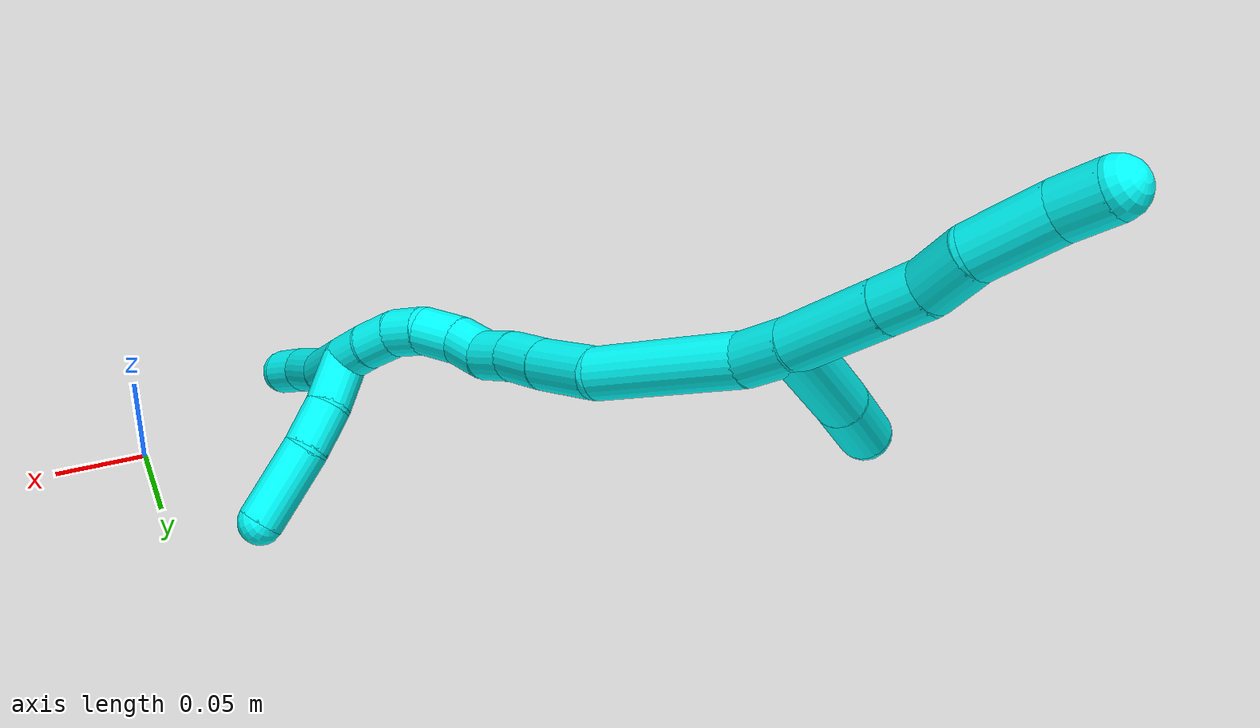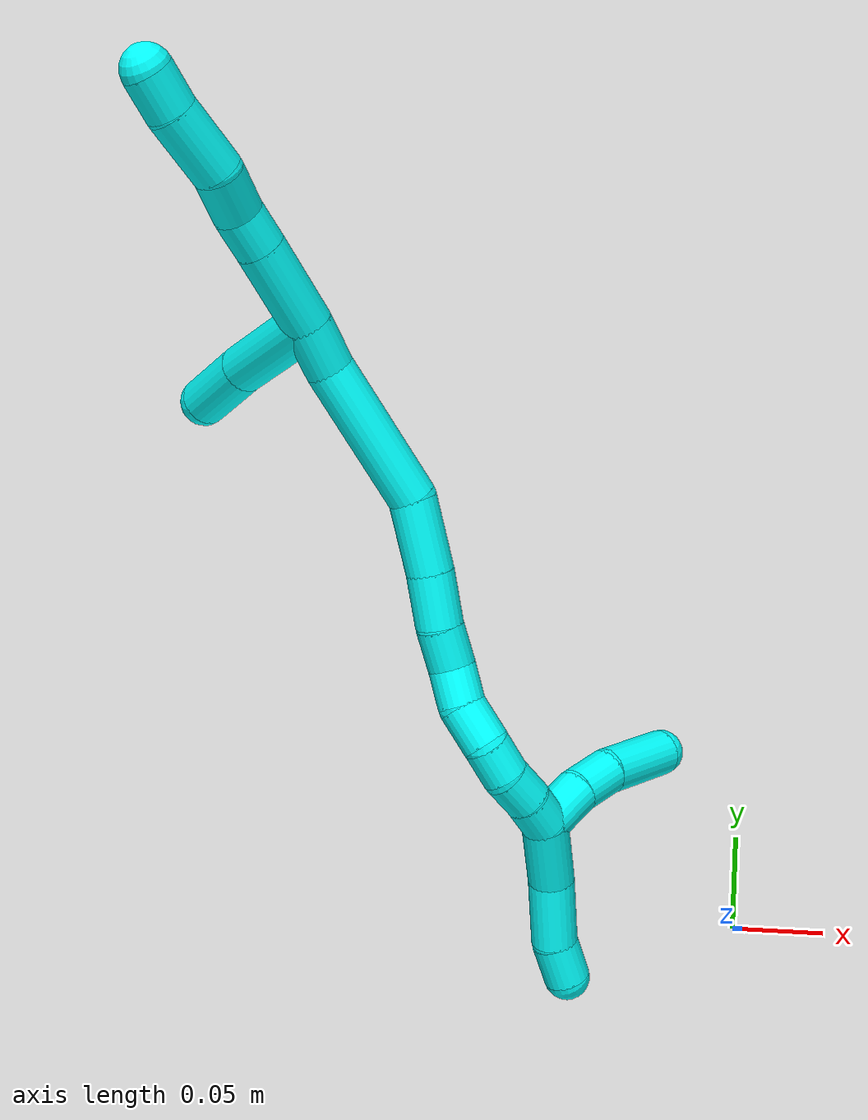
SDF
<sdf version="1.7">
 <world name="default">
  <model name="3">
   <static>0</static>
   <link name="3">
    <collision name="collision-cylinder-e_1_2_8">
     <pose>-0.00252 0.001022 0.023089 -0.044222 -0.108628 0.002405</pose>
     <geometry><cylinder><radius>0.0125</radius><length>0.046496</length></cylinder></geometry>
     <surface>
      <friction><ode><mu>1.16</mu><mu2>1.16</mu2><slip1>0</slip1><slip2>0</slip2></ode></friction>
      <contact><ode><kp>1e+06</kp><kd>1</kd><max_vel>0</max_vel><min_depth>0.001</min_depth></ode></contact>
     </surface>
    </collision>
    <visual name="visual-cylinder-e_1_2_8">
     <pose>-0.00252 0.001022 0.023089 -0.044222 -0.108628 0.002405</pose>
     <geometry><cylinder><radius>0.0125</radius><length>0.046496</length></cylinder></geometry>
     <material><ambient>0.003922 1 0.996078 1</ambient></material>
    </visual>
    <collision name="collision-cylinder-e_2_8_9">
     <pose>-0.006346 0.002439 0.056362 -0.038836 -0.127304 0.002476</pose>
     <geometry><cylinder><radius>0.0125</radius><length>0.020552</length></cylinder></geometry>
     <surface>
      <friction><ode><mu>1.16</mu><mu2>1.16</mu2><slip1>0</slip1><slip2>0</slip2></ode></friction>
      <contact><ode><kp>1e+06</kp><kd>1</kd><max_vel>0</max_vel><min_depth>0.001</min_depth></ode></contact>
     </surface>
    </collision>
    <visual name="visual-cylinder-e_2_8_9">
     <pose>-0.006346 0.002439 0.056362 -0.038836 -0.127304 0.002476</pose>
     <geometry><cylinder><radius>0.0125</radius><length>0.020552</length></cylinder></geometry>
     <material><ambient>0.003922 1 0.996078 1</ambient></material>
    </visual>
    <collision name="collision-cylinder-e_3_9_10">
     <pose>-0.007185 0.00084 0.078933 0.159702 0.03706 0.002966</pose>
     <geometry><cylinder><radius>0.0125</radius><length>0.025108</length></cylinder></geometry>
     <surface>
      <friction><ode><mu>1.16</mu><mu2>1.16</mu2><slip1>0</slip1><slip2>0</slip2></ode></friction>
      <contact><ode><kp>1e+06</kp><kd>1</kd><max_vel>0</max_vel><min_depth>0.001</min_depth></ode></contact>
     </surface>
    </collision>
    <visual name="visual-cylinder-e_3_9_10">
     <pose>-0.007185 0.00084 0.078933 0.159702 0.03706 0.002966</pose>
     <geometry><cylinder><radius>0.0125</radius><length>0.025108</length></cylinder></geometry>
     <material><ambient>0.003922 1 0.996078 1</ambient></material>
    </visual>
    <collision name="collision-cylinder-e_4_10_11">
     <pose>-0.010252 -0.00133 0.109011 0.009894 -0.197065 -0.000978</pose>
     <geometry><cylinder><radius>0.0125</radius><length>0.036085</length></cylinder></geometry>
     <surface>
      <friction><ode><mu>1.16</mu><mu2>1.16</mu2><slip1>0</slip1><slip2>0</slip2></ode></friction>
      <contact><ode><kp>1e+06</kp><kd>1</kd><max_vel>0</max_vel><min_depth>0.001</min_depth></ode></contact>
     </surface>
    </collision>
    <visual name="visual-cylinder-e_4_10_11">
     <pose>-0.010252 -0.00133 0.109011 0.009894 -0.197065 -0.000978</pose>
     <geometry><cylinder><radius>0.0125</radius><length>0.036085</length></cylinder></geometry>
     <material><ambient>0.003922 1 0.996078 1</ambient></material>
    </visual>
    <collision name="collision-cylinder-e_5_11_6">
     <pose>-0.014853 -0.000705 0.137501 -0.074017 -0.098329 0.003644</pose>
     <geometry><cylinder><radius>0.0125</radius><length>0.021759</length></cylinder></geometry>
     <surface>
      <friction><ode><mu>1.16</mu><mu2>1.16</mu2><slip1>0</slip1><slip2>0</slip2></ode></friction>
      <contact><ode><kp>1e+06</kp><kd>1</kd><max_vel>0</max_vel><min_depth>0.001</min_depth></ode></contact>
     </surface>
    </collision>
    <visual name="visual-cylinder-e_5_11_6">
     <pose>-0.014853 -0.000705 0.137501 -0.074017 -0.098329 0.003644</pose>
     <geometry><cylinder><radius>0.0125</radius><length>0.021759</length></cylinder></geometry>
     <material><ambient>0.003922 1 0.996078 1</ambient></material>
    </visual>
    <collision name="collision-cylinder-e_1_2_12">
     <pose>-0.022993 0.013197 -0.013586 -2.37069 -0.881757 1.72117</pose>
     <geometry><cylinder><radius>0.0125</radius><length>0.05958</length></cylinder></geometry>
     <surface>
      <friction><ode><mu>1.16</mu><mu2>1.16</mu2><slip1>0</slip1><slip2>0</slip2></ode></friction>
      <contact><ode><kp>1e+06</kp><kd>1</kd><max_vel>0</max_vel><min_depth>0.001</min_depth></ode></contact>
     </surface>
    </collision>
    <visual name="visual-cylinder-e_1_2_12">
     <pose>-0.022993 0.013197 -0.013586 -2.37069 -0.881757 1.72117</pose>
     <geometry><cylinder><radius>0.0125</radius><length>0.05958</length></cylinder></geometry>
     <material><ambient>0.003922 1 0.996078 1</ambient></material>
    </visual>
    <collision name="collision-cylinder-e_2_12_5">
     <pose>-0.061509 0.034394 -0.037345 -2.47529 -0.875783 1.86863</pose>
     <geometry><cylinder><radius>0.0125</radius><length>0.04042</length></cylinder></geometry>
     <surface>
      <friction><ode><mu>1.16</mu><mu2>1.16</mu2><slip1>0</slip1><slip2>0</slip2></ode></friction>
      <contact><ode><kp>1e+06</kp><kd>1</kd><max_vel>0</max_vel><min_depth>0.001</min_depth></ode></contact>
     </surface>
    </collision>
    <visual name="visual-cylinder-e_2_12_5">
     <pose>-0.061509 0.034394 -0.037345 -2.47529 -0.875783 1.86863</pose>
     <geometry><cylinder><radius>0.0125</radius><length>0.04042</length></cylinder></geometry>
     <material><ambient>0.003922 1 0.996078 1</ambient></material>
    </visual>
    <collision name="collision-cylinder-e_1_2_13">
     <pose>0.00056 -0.001586 -0.012954 3.01973 0.042922 0.676619</pose>
     <geometry><cylinder><radius>0.0125</radius><length>0.026125</length></cylinder></geometry>
     <surface>
      <friction><ode><mu>1.16</mu><mu2>1.16</mu2><slip1>0</slip1><slip2>0</slip2></ode></friction>
      <contact><ode><kp>1e+06</kp><kd>1</kd><max_vel>0</max_vel><min_depth>0.001</min_depth></ode></contact>
     </surface>
    </collision>
    <visual name="visual-cylinder-e_1_2_13">
     <pose>0.00056 -0.001586 -0.012954 3.01973 0.042922 0.676619</pose>
     <geometry><cylinder><radius>0.0125</radius><length>0.026125</length></cylinder></geometry>
     <material><ambient>0.003922 1 0.996078 1</ambient></material>
    </visual>
    <collision name="collision-cylinder-e_2_13_14">
     <pose>0.008565 -0.014782 -0.06243 2.83383 0.191849 1.11048</pose>
     <geometry><cylinder><radius>0.0125</radius><length>0.07808</length></cylinder></geometry>
     <surface>
      <friction><ode><mu>1.16</mu><mu2>1.16</mu2><slip1>0</slip1><slip2>0</slip2></ode></friction>
      <contact><ode><kp>1e+06</kp><kd>1</kd><max_vel>0</max_vel><min_depth>0.001</min_depth></ode></contact>
     </surface>
    </collision>
    <visual name="visual-cylinder-e_2_13_14">
     <pose>0.008565 -0.014782 -0.06243 2.83383 0.191849 1.11048</pose>
     <geometry><cylinder><radius>0.0125</radius><length>0.07808</length></cylinder></geometry>
     <material><ambient>0.003922 1 0.996078 1</ambient></material>
    </visual>
    <collision name="collision-cylinder-e_3_14_15">
     <pose>0.013732 -0.034539 -0.116669 2.71052 -0.116227 -0.519456</pose>
     <geometry><cylinder><radius>0.0125</radius><length>0.039264</length></cylinder></geometry>
     <surface>
      <friction><ode><mu>1.16</mu><mu2>1.16</mu2><slip1>0</slip1><slip2>0</slip2></ode></friction>
      <contact><ode><kp>1e+06</kp><kd>1</kd><max_vel>0</max_vel><min_depth>0.001</min_depth></ode></contact>
     </surface>
    </collision>
    <visual name="visual-cylinder-e_3_14_15">
     <pose>0.013732 -0.034539 -0.116669 2.71052 -0.116227 -0.519456</pose>
     <geometry><cylinder><radius>0.0125</radius><length>0.039264</length></cylinder></geometry>
     <material><ambient>0.003922 1 0.996078 1</ambient></material>
    </visual>
    <collision name="collision-cylinder-e_4_15_16">
     <pose>0.008994 -0.049023 -0.147017 2.67672 -0.172437 -0.700188</pose>
     <geometry><cylinder><radius>0.0125</radius><length>0.028691</length></cylinder></geometry>
     <surface>
      <friction><ode><mu>1.16</mu><mu2>1.16</mu2><slip1>0</slip1><slip2>0</slip2></ode></friction>
      <contact><ode><kp>1e+06</kp><kd>1</kd><max_vel>0</max_vel><min_depth>0.001</min_depth></ode></contact>
     </surface>
    </collision>
    <visual name="visual-cylinder-e_4_15_16">
     <pose>0.008994 -0.049023 -0.147017 2.67672 -0.172437 -0.700188</pose>
     <geometry><cylinder><radius>0.0125</radius><length>0.028691</length></cylinder></geometry>
     <material><ambient>0.003922 1 0.996078 1</ambient></material>
    </visual>
    <collision name="collision-cylinder-e_5_16_17">
     <pose>0.005693 -0.059478 -0.170352 2.77419 -0.073117 -0.388739</pose>
     <geometry><cylinder><radius>0.0125</radius><length>0.022996</length></cylinder></geometry>
     <surface>
      <friction><ode><mu>1.16</mu><mu2>1.16</mu2><slip1>0</slip1><slip2>0</slip2></ode></friction>
      <contact><ode><kp>1e+06</kp><kd>1</kd><max_vel>0</max_vel><min_depth>0.001</min_depth></ode></contact>
     </surface>
    </collision>
    <visual name="visual-cylinder-e_5_16_17">
     <pose>0.005693 -0.059478 -0.170352 2.77419 -0.073117 -0.388739</pose>
     <geometry><cylinder><radius>0.0125</radius><length>0.022996</length></cylinder></geometry>
     <material><ambient>0.003922 1 0.996078 1</ambient></material>
    </visual>
    <collision name="collision-cylinder-e_6_17_18">
     <pose>0.004319 -0.07044 -0.188988 2.42986 -0.050916 -0.1368</pose>
     <geometry><cylinder><radius>0.0125</radius><length>0.020981</length></cylinder></geometry>
     <surface>
      <friction><ode><mu>1.16</mu><mu2>1.16</mu2><slip1>0</slip1><slip2>0</slip2></ode></friction>
      <contact><ode><kp>1e+06</kp><kd>1</kd><max_vel>0</max_vel><min_depth>0.001</min_depth></ode></contact>
     </surface>
    </collision>
    <visual name="visual-cylinder-e_6_17_18">
     <pose>0.004319 -0.07044 -0.188988 2.42986 -0.050916 -0.1368</pose>
     <geometry><cylinder><radius>0.0125</radius><length>0.020981</length></cylinder></geometry>
     <material><ambient>0.003922 1 0.996078 1</ambient></material>
    </visual>
    <collision name="collision-cylinder-e_7_18_19">
     <pose>0.006688 -0.084121 -0.205847 2.4879 0.252717 0.717066</pose>
     <geometry><cylinder><radius>0.0125</radius><length>0.023225</length></cylinder></geometry>
     <surface>
      <friction><ode><mu>1.16</mu><mu2>1.16</mu2><slip1>0</slip1><slip2>0</slip2></ode></friction>
      <contact><ode><kp>1e+06</kp><kd>1</kd><max_vel>0</max_vel><min_depth>0.001</min_depth></ode></contact>
     </surface>
    </collision>
    <visual name="visual-cylinder-e_7_18_19">
     <pose>0.006688 -0.084121 -0.205847 2.4879 0.252717 0.717066</pose>
     <geometry><cylinder><radius>0.0125</radius><length>0.023225</length></cylinder></geometry>
     <material><ambient>0.003922 1 0.996078 1</ambient></material>
    </visual>
    <collision name="collision-cylinder-e_8_19_20">
     <pose>0.011299 -0.094195 -0.224088 2.80717 0.171433 0.941774</pose>
     <geometry><cylinder><radius>0.0125</radius><length>0.020017</length></cylinder></geometry>
     <surface>
      <friction><ode><mu>1.16</mu><mu2>1.16</mu2><slip1>0</slip1><slip2>0</slip2></ode></friction>
      <contact><ode><kp>1e+06</kp><kd>1</kd><max_vel>0</max_vel><min_depth>0.001</min_depth></ode></contact>
     </surface>
    </collision>
    <visual name="visual-cylinder-e_8_19_20">
     <pose>0.011299 -0.094195 -0.224088 2.80717 0.171433 0.941774</pose>
     <geometry><cylinder><radius>0.0125</radius><length>0.020017</length></cylinder></geometry>
     <material><ambient>0.003922 1 0.996078 1</ambient></material>
    </visual>
    <collision name="collision-cylinder-e_9_20_21">
     <pose>0.015673 -0.098084 -0.243308 3.07584 0.262437 2.65315</pose>
     <geometry><cylinder><radius>0.0125</radius><length>0.020555</length></cylinder></geometry>
     <surface>
      <friction><ode><mu>1.16</mu><mu2>1.16</mu2><slip1>0</slip1><slip2>0</slip2></ode></friction>
      <contact><ode><kp>1e+06</kp><kd>1</kd><max_vel>0</max_vel><min_depth>0.001</min_depth></ode></contact>
     </surface>
    </collision>
    <visual name="visual-cylinder-e_9_20_21">
     <pose>0.015673 -0.098084 -0.243308 3.07584 0.262437 2.65315</pose>
     <geometry><cylinder><radius>0.0125</radius><length>0.020555</length></cylinder></geometry>
     <material><ambient>0.003922 1 0.996078 1</ambient></material>
    </visual>
    <collision name="collision-cylinder-e_10_21_1">
     <pose>0.01981 -0.098977 -0.263134 3.11735 0.14709 2.81542</pose>
     <geometry><cylinder><radius>0.0125</radius><length>0.020066</length></cylinder></geometry>
     <surface>
      <friction><ode><mu>1.16</mu><mu2>1.16</mu2><slip1>0</slip1><slip2>0</slip2></ode></friction>
      <contact><ode><kp>1e+06</kp><kd>1</kd><max_vel>0</max_vel><min_depth>0.001</min_depth></ode></contact>
     </surface>
    </collision>
    <visual name="visual-cylinder-e_10_21_1">
     <pose>0.01981 -0.098977 -0.263134 3.11735 0.14709 2.81542</pose>
     <geometry><cylinder><radius>0.0125</radius><length>0.020066</length></cylinder></geometry>
     <material><ambient>0.003922 1 0.996078 1</ambient></material>
    </visual>
    <collision name="collision-cylinder-e_1_1_22">
     <pose>0.030404 -0.08829 -0.275659 -1.80472 0.682141 -0.844805</pose>
     <geometry><cylinder><radius>0.0125</radius><length>0.028943</length></cylinder></geometry>
     <surface>
      <friction><ode><mu>1.16</mu><mu2>1.16</mu2><slip1>0</slip1><slip2>0</slip2></ode></friction>
      <contact><ode><kp>1e+06</kp><kd>1</kd><max_vel>0</max_vel><min_depth>0.001</min_depth></ode></contact>
     </surface>
    </collision>
    <visual name="visual-cylinder-e_1_1_22">
     <pose>0.030404 -0.08829 -0.275659 -1.80472 0.682141 -0.844805</pose>
     <geometry><cylinder><radius>0.0125</radius><length>0.028943</length></cylinder></geometry>
     <material><ambient>0.003922 1 0.996078 1</ambient></material>
    </visual>
    <collision name="collision-cylinder-e_2_22_23">
     <pose>0.047741 -0.068787 -0.28264 -2.04271 0.706292 -1.08371</pose>
     <geometry><cylinder><radius>0.0125</radius><length>0.025311</length></cylinder></geometry>
     <surface>
      <friction><ode><mu>1.16</mu><mu2>1.16</mu2><slip1>0</slip1><slip2>0</slip2></ode></friction>
      <contact><ode><kp>1e+06</kp><kd>1</kd><max_vel>0</max_vel><min_depth>0.001</min_depth></ode></contact>
     </surface>
    </collision>
    <visual name="visual-cylinder-e_2_22_23">
     <pose>0.047741 -0.068787 -0.28264 -2.04271 0.706292 -1.08371</pose>
     <geometry><cylinder><radius>0.0125</radius><length>0.025311</length></cylinder></geometry>
     <material><ambient>0.003922 1 0.996078 1</ambient></material>
    </visual>
    <collision name="collision-cylinder-e_3_23_4">
     <pose>0.069625 -0.04647 -0.29916 -2.2945 0.640595 -1.26869</pose>
     <geometry><cylinder><radius>0.0125</radius><length>0.045746</length></cylinder></geometry>
     <surface>
      <friction><ode><mu>1.16</mu><mu2>1.16</mu2><slip1>0</slip1><slip2>0</slip2></ode></friction>
      <contact><ode><kp>1e+06</kp><kd>1</kd><max_vel>0</max_vel><min_depth>0.001</min_depth></ode></contact>
     </surface>
    </collision>
    <visual name="visual-cylinder-e_3_23_4">
     <pose>0.069625 -0.04647 -0.29916 -2.2945 0.640595 -1.26869</pose>
     <geometry><cylinder><radius>0.0125</radius><length>0.045746</length></cylinder></geometry>
     <material><ambient>0.003922 1 0.996078 1</ambient></material>
    </visual>
    <collision name="collision-cylinder-e_1_1_24">
     <pose>0.016704 -0.101282 -0.29138 3.02939 -0.243276 -2.2803</pose>
     <geometry><cylinder><radius>0.0125</radius><length>0.037999</length></cylinder></geometry>
     <surface>
      <friction><ode><mu>1.16</mu><mu2>1.16</mu2><slip1>0</slip1><slip2>0</slip2></ode></friction>
      <contact><ode><kp>1e+06</kp><kd>1</kd><max_vel>0</max_vel><min_depth>0.001</min_depth></ode></contact>
     </surface>
    </collision>
    <visual name="visual-cylinder-e_1_1_24">
     <pose>0.016704 -0.101282 -0.29138 3.02939 -0.243276 -2.2803</pose>
     <geometry><cylinder><radius>0.0125</radius><length>0.037999</length></cylinder></geometry>
     <material><ambient>0.003922 1 0.996078 1</ambient></material>
    </visual>
    <collision name="collision-cylinder-e_2_24_25">
     <pose>0.006701 -0.109036 -0.327109 2.82566 -0.288079 -1.47724</pose>
     <geometry><cylinder><radius>0.0125</radius><length>0.038198</length></cylinder></geometry>
     <surface>
      <friction><ode><mu>1.16</mu><mu2>1.16</mu2><slip1>0</slip1><slip2>0</slip2></ode></friction>
      <contact><ode><kp>1e+06</kp><kd>1</kd><max_vel>0</max_vel><min_depth>0.001</min_depth></ode></contact>
     </surface>
    </collision>
    <visual name="visual-cylinder-e_2_24_25">
     <pose>0.006701 -0.109036 -0.327109 2.82566 -0.288079 -1.47724</pose>
     <geometry><cylinder><radius>0.0125</radius><length>0.038198</length></cylinder></geometry>
     <material><ambient>0.003922 1 0.996078 1</ambient></material>
    </visual>
    <collision name="collision-cylinder-e_3_25_3">
     <pose>0.000718 -0.118032 -0.355934 2.85977 -0.046809 -0.327097</pose>
     <geometry><cylinder><radius>0.0125</radius><length>0.023803</length></cylinder></geometry>
     <surface>
      <friction><ode><mu>1.16</mu><mu2>1.16</mu2><slip1>0</slip1><slip2>0</slip2></ode></friction>
      <contact><ode><kp>1e+06</kp><kd>1</kd><max_vel>0</max_vel><min_depth>0.001</min_depth></ode></contact>
     </surface>
    </collision>
    <visual name="visual-cylinder-e_3_25_3">
     <pose>0.000718 -0.118032 -0.355934 2.85977 -0.046809 -0.327097</pose>
     <geometry><cylinder><radius>0.0125</radius><length>0.023803</length></cylinder></geometry>
     <material><ambient>0.003922 1 0.996078 1</ambient></material>
    </visual>
    <collision name="collision-sphere-3">
     <pose>0.000161 -0.121338 -0.367354 0 -0 0</pose>
     <geometry><sphere><radius>0.0125</radius></sphere></geometry>
     <surface>
      <friction><ode><mu>1.16</mu><mu2>1.16</mu2><slip1>0</slip1><slip2>0</slip2></ode></friction>
      <contact><ode><kp>1e+06</kp><kd>1</kd><max_vel>0</max_vel><min_depth>0.001</min_depth></ode></contact>
     </surface>
    </collision>
    <visual name="visual-sphere-3">
     <pose>0.000161 -0.121338 -0.367354 0 -0 0</pose>
     <geometry><sphere><radius>0.0125</radius></sphere></geometry>
     <material><ambient>0.003922 1 0.996078 1</ambient></material>
    </visual>
    <collision name="collision-sphere-25">
     <pose>0.001275 -0.114726 -0.344515 0 -0 0</pose>
     <geometry><sphere><radius>0.0125</radius></sphere></geometry>
     <surface>
      <friction><ode><mu>1.16</mu><mu2>1.16</mu2><slip1>0</slip1><slip2>0</slip2></ode></friction>
      <contact><ode><kp>1e+06</kp><kd>1</kd><max_vel>0</max_vel><min_depth>0.001</min_depth></ode></contact>
     </surface>
    </collision>
    <visual name="visual-sphere-25">
     <pose>0.001275 -0.114726 -0.344515 0 -0 0</pose>
     <geometry><sphere><radius>0.0125</radius></sphere></geometry>
     <material><ambient>0.003922 1 0.996078 1</ambient></material>
    </visual>
    <collision name="collision-sphere-24">
     <pose>0.012127 -0.103347 -0.309703 0 -0 0</pose>
     <geometry><sphere><radius>0.0125</radius></sphere></geometry>
     <surface>
      <friction><ode><mu>1.16</mu><mu2>1.16</mu2><slip1>0</slip1><slip2>0</slip2></ode></friction>
      <contact><ode><kp>1e+06</kp><kd>1</kd><max_vel>0</max_vel><min_depth>0.001</min_depth></ode></contact>
     </surface>
    </collision>
    <visual name="visual-sphere-24">
     <pose>0.012127 -0.103347 -0.309703 0 -0 0</pose>
     <geometry><sphere><radius>0.0125</radius></sphere></geometry>
     <material><ambient>0.003922 1 0.996078 1</ambient></material>
    </visual>
    <collision name="collision-sphere-4">
     <pose>0.083296 -0.032728 -0.311303 0 -0 0</pose>
     <geometry><sphere><radius>0.0125</radius></sphere></geometry>
     <surface>
      <friction><ode><mu>1.16</mu><mu2>1.16</mu2><slip1>0</slip1><slip2>0</slip2></ode></friction>
      <contact><ode><kp>1e+06</kp><kd>1</kd><max_vel>0</max_vel><min_depth>0.001</min_depth></ode></contact>
     </surface>
    </collision>
    <visual name="visual-sphere-4">
     <pose>0.083296 -0.032728 -0.311303 0 -0 0</pose>
     <geometry><sphere><radius>0.0125</radius></sphere></geometry>
     <material><ambient>0.003922 1 0.996078 1</ambient></material>
    </visual>
    <collision name="collision-sphere-23">
     <pose>0.055955 -0.060212 -0.287017 0 -0 0</pose>
     <geometry><sphere><radius>0.0125</radius></sphere></geometry>
     <surface>
      <friction><ode><mu>1.16</mu><mu2>1.16</mu2><slip1>0</slip1><slip2>0</slip2></ode></friction>
      <contact><ode><kp>1e+06</kp><kd>1</kd><max_vel>0</max_vel><min_depth>0.001</min_depth></ode></contact>
     </surface>
    </collision>
    <visual name="visual-sphere-23">
     <pose>0.055955 -0.060212 -0.287017 0 -0 0</pose>
     <geometry><sphere><radius>0.0125</radius></sphere></geometry>
     <material><ambient>0.003922 1 0.996078 1</ambient></material>
    </visual>
    <collision name="collision-sphere-22">
     <pose>0.039528 -0.077363 -0.278263 0 -0 0</pose>
     <geometry><sphere><radius>0.0125</radius></sphere></geometry>
     <surface>
      <friction><ode><mu>1.16</mu><mu2>1.16</mu2><slip1>0</slip1><slip2>0</slip2></ode></friction>
      <contact><ode><kp>1e+06</kp><kd>1</kd><max_vel>0</max_vel><min_depth>0.001</min_depth></ode></contact>
     </surface>
    </collision>
    <visual name="visual-sphere-22">
     <pose>0.039528 -0.077363 -0.278263 0 -0 0</pose>
     <geometry><sphere><radius>0.0125</radius></sphere></geometry>
     <material><ambient>0.003922 1 0.996078 1</ambient></material>
    </visual>
    <collision name="collision-sphere-1">
     <pose>0.02128 -0.099217 -0.273056 0 -0 0</pose>
     <geometry><sphere><radius>0.0125</radius></sphere></geometry>
     <surface>
      <friction><ode><mu>1.16</mu><mu2>1.16</mu2><slip1>0</slip1><slip2>0</slip2></ode></friction>
      <contact><ode><kp>1e+06</kp><kd>1</kd><max_vel>0</max_vel><min_depth>0.001</min_depth></ode></contact>
     </surface>
    </collision>
    <visual name="visual-sphere-1">
     <pose>0.02128 -0.099217 -0.273056 0 -0 0</pose>
     <geometry><sphere><radius>0.0125</radius></sphere></geometry>
     <material><ambient>0.003922 1 0.996078 1</ambient></material>
    </visual>
    <collision name="collision-sphere-21">
     <pose>0.018339 -0.098736 -0.253212 0 -0 0</pose>
     <geometry><sphere><radius>0.0125</radius></sphere></geometry>
     <surface>
      <friction><ode><mu>1.16</mu><mu2>1.16</mu2><slip1>0</slip1><slip2>0</slip2></ode></friction>
      <contact><ode><kp>1e+06</kp><kd>1</kd><max_vel>0</max_vel><min_depth>0.001</min_depth></ode></contact>
     </surface>
    </collision>
    <visual name="visual-sphere-21">
     <pose>0.018339 -0.098736 -0.253212 0 -0 0</pose>
     <geometry><sphere><radius>0.0125</radius></sphere></geometry>
     <material><ambient>0.003922 1 0.996078 1</ambient></material>
    </visual>
    <collision name="collision-sphere-6">
     <pose>-0.015921 9.6e-05 0.148298 0 -0 0</pose>
     <geometry><sphere><radius>0.0125</radius></sphere></geometry>
     <surface>
      <friction><ode><mu>1.16</mu><mu2>1.16</mu2><slip1>0</slip1><slip2>0</slip2></ode></friction>
      <contact><ode><kp>1e+06</kp><kd>1</kd><max_vel>0</max_vel><min_depth>0.001</min_depth></ode></contact>
     </surface>
    </collision>
    <visual name="visual-sphere-6">
     <pose>-0.015921 9.6e-05 0.148298 0 -0 0</pose>
     <geometry><sphere><radius>0.0125</radius></sphere></geometry>
     <material><ambient>0.003922 1 0.996078 1</ambient></material>
    </visual>
    <collision name="collision-sphere-11">
     <pose>-0.013785 -0.001505 0.126704 0 -0 0</pose>
     <geometry><sphere><radius>0.0125</radius></sphere></geometry>
     <surface>
      <friction><ode><mu>1.16</mu><mu2>1.16</mu2><slip1>0</slip1><slip2>0</slip2></ode></friction>
      <contact><ode><kp>1e+06</kp><kd>1</kd><max_vel>0</max_vel><min_depth>0.001</min_depth></ode></contact>
     </surface>
    </collision>
    <visual name="visual-sphere-11">
     <pose>-0.013785 -0.001505 0.126704 0 -0 0</pose>
     <geometry><sphere><radius>0.0125</radius></sphere></geometry>
     <material><ambient>0.003922 1 0.996078 1</ambient></material>
    </visual>
    <collision name="collision-sphere-10">
     <pose>-0.00672 -0.001155 0.091319 0 -0 0</pose>
     <geometry><sphere><radius>0.0125</radius></sphere></geometry>
     <surface>
      <friction><ode><mu>1.16</mu><mu2>1.16</mu2><slip1>0</slip1><slip2>0</slip2></ode></friction>
      <contact><ode><kp>1e+06</kp><kd>1</kd><max_vel>0</max_vel><min_depth>0.001</min_depth></ode></contact>
     </surface>
    </collision>
    <visual name="visual-sphere-10">
     <pose>-0.00672 -0.001155 0.091319 0 -0 0</pose>
     <geometry><sphere><radius>0.0125</radius></sphere></geometry>
     <material><ambient>0.003922 1 0.996078 1</ambient></material>
    </visual>
    <collision name="collision-sphere-9">
     <pose>-0.00765 0.002835 0.066547 0 -0 0</pose>
     <geometry><sphere><radius>0.0125</radius></sphere></geometry>
     <surface>
      <friction><ode><mu>1.16</mu><mu2>1.16</mu2><slip1>0</slip1><slip2>0</slip2></ode></friction>
      <contact><ode><kp>1e+06</kp><kd>1</kd><max_vel>0</max_vel><min_depth>0.001</min_depth></ode></contact>
     </surface>
    </collision>
    <visual name="visual-sphere-9">
     <pose>-0.00765 0.002835 0.066547 0 -0 0</pose>
     <geometry><sphere><radius>0.0125</radius></sphere></geometry>
     <material><ambient>0.003922 1 0.996078 1</ambient></material>
    </visual>
    <collision name="collision-sphere-2">
     <geometry><sphere><radius>0.0125</radius></sphere></geometry>
     <surface>
      <friction><ode><mu>1.16</mu><mu2>1.16</mu2><slip1>0</slip1><slip2>0</slip2></ode></friction>
      <contact><ode><kp>1e+06</kp><kd>1</kd><max_vel>0</max_vel><min_depth>0.001</min_depth></ode></contact>
     </surface>
    </collision>
    <visual name="visual-sphere-2">
     <geometry><sphere><radius>0.0125</radius></sphere></geometry>
     <material><ambient>0.003922 1 0.996078 1</ambient></material>
    </visual>
    <collision name="collision-sphere-19">
     <pose>0.009592 -0.090958 -0.214773 0 -0 0</pose>
     <geometry><sphere><radius>0.0125</radius></sphere></geometry>
     <surface>
      <friction><ode><mu>1.16</mu><mu2>1.16</mu2><slip1>0</slip1><slip2>0</slip2></ode></friction>
      <contact><ode><kp>1e+06</kp><kd>1</kd><max_vel>0</max_vel><min_depth>0.001</min_depth></ode></contact>
     </surface>
    </collision>
    <visual name="visual-sphere-19">
     <pose>0.009592 -0.090958 -0.214773 0 -0 0</pose>
     <geometry><sphere><radius>0.0125</radius></sphere></geometry>
     <material><ambient>0.003922 1 0.996078 1</ambient></material>
    </visual>
    <collision name="collision-sphere-8">
     <pose>-0.005041 0.002043 0.046177 0 -0 0</pose>
     <geometry><sphere><radius>0.0125</radius></sphere></geometry>
     <surface>
      <friction><ode><mu>1.16</mu><mu2>1.16</mu2><slip1>0</slip1><slip2>0</slip2></ode></friction>
      <contact><ode><kp>1e+06</kp><kd>1</kd><max_vel>0</max_vel><min_depth>0.001</min_depth></ode></contact>
     </surface>
    </collision>
    <visual name="visual-sphere-8">
     <pose>-0.005041 0.002043 0.046177 0 -0 0</pose>
     <geometry><sphere><radius>0.0125</radius></sphere></geometry>
     <material><ambient>0.003922 1 0.996078 1</ambient></material>
    </visual>
    <collision name="collision-sphere-12">
     <pose>-0.045987 0.026394 -0.027171 0 -0 0</pose>
     <geometry><sphere><radius>0.0125</radius></sphere></geometry>
     <surface>
      <friction><ode><mu>1.16</mu><mu2>1.16</mu2><slip1>0</slip1><slip2>0</slip2></ode></friction>
      <contact><ode><kp>1e+06</kp><kd>1</kd><max_vel>0</max_vel><min_depth>0.001</min_depth></ode></contact>
     </surface>
    </collision>
    <visual name="visual-sphere-12">
     <pose>-0.045987 0.026394 -0.027171 0 -0 0</pose>
     <geometry><sphere><radius>0.0125</radius></sphere></geometry>
     <material><ambient>0.003922 1 0.996078 1</ambient></material>
    </visual>
    <collision name="collision-sphere-5">
     <pose>-0.077032 0.042393 -0.04752 0 -0 0</pose>
     <geometry><sphere><radius>0.0125</radius></sphere></geometry>
     <surface>
      <friction><ode><mu>1.16</mu><mu2>1.16</mu2><slip1>0</slip1><slip2>0</slip2></ode></friction>
      <contact><ode><kp>1e+06</kp><kd>1</kd><max_vel>0</max_vel><min_depth>0.001</min_depth></ode></contact>
     </surface>
    </collision>
    <visual name="visual-sphere-5">
     <pose>-0.077032 0.042393 -0.04752 0 -0 0</pose>
     <geometry><sphere><radius>0.0125</radius></sphere></geometry>
     <material><ambient>0.003922 1 0.996078 1</ambient></material>
    </visual>
    <collision name="collision-sphere-13">
     <pose>0.001121 -0.003173 -0.025907 0 -0 0</pose>
     <geometry><sphere><radius>0.0125</radius></sphere></geometry>
     <surface>
      <friction><ode><mu>1.16</mu><mu2>1.16</mu2><slip1>0</slip1><slip2>0</slip2></ode></friction>
      <contact><ode><kp>1e+06</kp><kd>1</kd><max_vel>0</max_vel><min_depth>0.001</min_depth></ode></contact>
     </surface>
    </collision>
    <visual name="visual-sphere-13">
     <pose>0.001121 -0.003173 -0.025907 0 -0 0</pose>
     <geometry><sphere><radius>0.0125</radius></sphere></geometry>
     <material><ambient>0.003922 1 0.996078 1</ambient></material>
    </visual>
    <collision name="collision-sphere-14">
     <pose>0.016009 -0.026391 -0.098953 0 -0 0</pose>
     <geometry><sphere><radius>0.0125</radius></sphere></geometry>
     <surface>
      <friction><ode><mu>1.16</mu><mu2>1.16</mu2><slip1>0</slip1><slip2>0</slip2></ode></friction>
      <contact><ode><kp>1e+06</kp><kd>1</kd><max_vel>0</max_vel><min_depth>0.001</min_depth></ode></contact>
     </surface>
    </collision>
    <visual name="visual-sphere-14">
     <pose>0.016009 -0.026391 -0.098953 0 -0 0</pose>
     <geometry><sphere><radius>0.0125</radius></sphere></geometry>
     <material><ambient>0.003922 1 0.996078 1</ambient></material>
    </visual>
    <collision name="collision-sphere-15">
     <pose>0.011455 -0.042687 -0.134384 0 -0 0</pose>
     <geometry><sphere><radius>0.0125</radius></sphere></geometry>
     <surface>
      <friction><ode><mu>1.16</mu><mu2>1.16</mu2><slip1>0</slip1><slip2>0</slip2></ode></friction>
      <contact><ode><kp>1e+06</kp><kd>1</kd><max_vel>0</max_vel><min_depth>0.001</min_depth></ode></contact>
     </surface>
    </collision>
    <visual name="visual-sphere-15">
     <pose>0.011455 -0.042687 -0.134384 0 -0 0</pose>
     <geometry><sphere><radius>0.0125</radius></sphere></geometry>
     <material><ambient>0.003922 1 0.996078 1</ambient></material>
    </visual>
    <collision name="collision-sphere-16">
     <pose>0.006533 -0.055359 -0.15965 0 -0 0</pose>
     <geometry><sphere><radius>0.0125</radius></sphere></geometry>
     <surface>
      <friction><ode><mu>1.16</mu><mu2>1.16</mu2><slip1>0</slip1><slip2>0</slip2></ode></friction>
      <contact><ode><kp>1e+06</kp><kd>1</kd><max_vel>0</max_vel><min_depth>0.001</min_depth></ode></contact>
     </surface>
    </collision>
    <visual name="visual-sphere-16">
     <pose>0.006533 -0.055359 -0.15965 0 -0 0</pose>
     <geometry><sphere><radius>0.0125</radius></sphere></geometry>
     <material><ambient>0.003922 1 0.996078 1</ambient></material>
    </visual>
    <collision name="collision-sphere-17">
     <pose>0.004853 -0.063597 -0.181054 0 -0 0</pose>
     <geometry><sphere><radius>0.0125</radius></sphere></geometry>
     <surface>
      <friction><ode><mu>1.16</mu><mu2>1.16</mu2><slip1>0</slip1><slip2>0</slip2></ode></friction>
      <contact><ode><kp>1e+06</kp><kd>1</kd><max_vel>0</max_vel><min_depth>0.001</min_depth></ode></contact>
     </surface>
    </collision>
    <visual name="visual-sphere-17">
     <pose>0.004853 -0.063597 -0.181054 0 -0 0</pose>
     <geometry><sphere><radius>0.0125</radius></sphere></geometry>
     <material><ambient>0.003922 1 0.996078 1</ambient></material>
    </visual>
    <collision name="collision-sphere-18">
     <pose>0.003785 -0.077283 -0.196921 0 -0 0</pose>
     <geometry><sphere><radius>0.0125</radius></sphere></geometry>
     <surface>
      <friction><ode><mu>1.16</mu><mu2>1.16</mu2><slip1>0</slip1><slip2>0</slip2></ode></friction>
      <contact><ode><kp>1e+06</kp><kd>1</kd><max_vel>0</max_vel><min_depth>0.001</min_depth></ode></contact>
     </surface>
    </collision>
    <visual name="visual-sphere-18">
     <pose>0.003785 -0.077283 -0.196921 0 -0 0</pose>
     <geometry><sphere><radius>0.0125</radius></sphere></geometry>
     <material><ambient>0.003922 1 0.996078 1</ambient></material>
    </visual>
    <collision name="collision-sphere-20">
     <pose>0.013007 -0.097432 -0.233404 0 -0 0</pose>
     <geometry><sphere><radius>0.0125</radius></sphere></geometry>
     <surface>
      <friction><ode><mu>1.16</mu><mu2>1.16</mu2><slip1>0</slip1><slip2>0</slip2></ode></friction>
      <contact><ode><kp>1e+06</kp><kd>1</kd><max_vel>0</max_vel><min_depth>0.001</min_depth></ode></contact>
     </surface>
    </collision>
    <visual name="visual-sphere-20">
     <pose>0.013007 -0.097432 -0.233404 0 -0 0</pose>
     <geometry><sphere><radius>0.0125</radius></sphere></geometry>
     <material><ambient>0.003922 1 0.996078 1</ambient></material>
    </visual>
    <inertial>
     <pose>0.005343 -0.039545 -0.124639 0 -0 0</pose>
     <mass>0.75</mass>
     <inertia><ixx>8.2e-05</ixx><ixy>0</ixy><ixz>0</ixz><iyy>4.9e-05</iyy><iyz>0</iyz><izz>-1.3e-05</izz></inertia>
    </inertial>
   </link>
   <pose>-0.239032 0.277636 0.196659 -0.760865 -0.185024 0.348073</pose>
  </model>
 </world>
</sdf>
